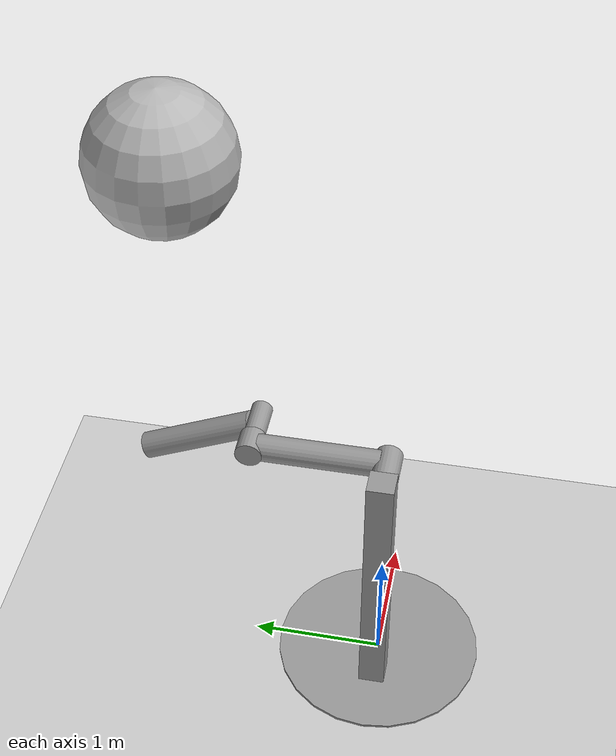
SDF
<sdf version="1.5">
  <world name="default">
    <physics type="ode">
      <gravity>0.000000 0.000000 -9.810000</gravity>
      <ode>
        <ode_quiet>1</ode_quiet>
        <solver>
          <type>world</type>
          <iters>250</iters>
          <precon_iters>0</precon_iters>
          <sor>1.400000</sor>
        </solver>
        <constraints>
          <cfm>0.000000</cfm>
          <erp>0.200000</erp>
          <contact_max_correcting_vel>0.000000</contact_max_correcting_vel>
          <contact_surface_layer>0.00000</contact_surface_layer>
        </constraints>
      </ode>
      <real_time_update_rate>1000.000000</real_time_update_rate>
      <max_step_size>0.001000</max_step_size>
    </physics>
    <model name="ground_plane">
    <static>true</static>
    <link name="link">
      <collision name="collision">
        <geometry>
          <plane>
            <normal>0 0 1</normal>
            <size>100 100</size>
          </plane>
        </geometry>
        <surface>
          <friction>
            <ode>
              <mu>100</mu>
              <mu2>50</mu2>
            </ode>
          </friction>
        </surface>
      </collision>
      <visual name="visual">
        <cast_shadows>false</cast_shadows>
        <geometry>
          <plane>
            <normal>0 0 1</normal>
            <size>100 100</size>
          </plane>
        </geometry>
        <material>
          <script>
            <uri>file://media/materials/scripts/gazebo.material</uri>
            <name>Gazebo/Grey</name>
          </script>
        </material>
      </visual>
    </link>
  </model>
 <model name="double_pendulum_with_base">
    <link name="base">
      <inertial>
        <mass>100</mass>
      </inertial>
      <visual name="vis_plate_on_ground">
        <pose>0 0 0.01  0 0 0</pose>
        <geometry>
          <cylinder>
            <radius>0.8</radius>
            <length>0.02</length>
          </cylinder>
        </geometry>
        <material>
          <script>
            <uri>file://media/materials/scripts/gazebo.material</uri>
            <name>Gazebo/Grey</name>
          </script>
        </material>
      </visual>
      <visual name="vis_pole">
        <pose>-0.275 0 1.1  0 0 0</pose>
        <geometry>
          <box><size>0.2 0.2 2.2</size></box>
        </geometry>
        <material>
          <script>
            <uri>file://media/materials/scripts/gazebo.material</uri>
            <name>Gazebo/Grey</name>
          </script>
        </material>
      </visual>
      <collision name="col_plate_on_ground">
        <pose>0 0 0.01  0 0 0</pose>
        <geometry>
          <cylinder>
            <radius>0.8</radius>
            <length>0.02</length>
          </cylinder>
        </geometry>
      </collision>
      <collision name="col_pole">
        <pose>-0.275 0 1.1  0 0 0</pose>
        <geometry>
          <box><size>0.2 0.2 2.2</size></box>
        </geometry>
      </collision>
    </link>
    <!-- upper link, length 1, IC -90 degrees -->
    <link name="upper_link">
      <pose>0 0 2.1  -1.5708 0 0</pose>
      <self_collide>0</self_collide>
      <inertial>
        <pose>0 0 0.5  0 0 0</pose>
      </inertial>
      <visual name="vis_upper_joint">
        <pose>-0.05 0 0  0 1.5708 0</pose>
        <geometry>
          <cylinder>
            <radius>0.1</radius>
            <length>0.3</length>
          </cylinder>
        </geometry>
        <material>
          <script>
            <uri>file://media/materials/scripts/gazebo.material</uri>
            <name>Gazebo/Grey</name>
          </script>
        </material>
      </visual>
      <visual name="vis_lower_joint">
        <pose>0 0 1.0  0 1.5708 0</pose>
        <geometry>
          <cylinder>
            <radius>0.1</radius>
            <length>0.2</length>
          </cylinder>
        </geometry>
        <material>
          <script>
            <uri>file://media/materials/scripts/gazebo.material</uri>
            <name>Gazebo/Grey</name>
          </script>
        </material>
      </visual>
      <visual name="vis_cylinder">
        <pose>0 0 0.5  0 0 0</pose>
        <geometry>
          <cylinder>
            <radius>0.1</radius>
            <length>0.9</length>
          </cylinder>
        </geometry>
        <material>
          <script>
            <uri>file://media/materials/scripts/gazebo.material</uri>
            <name>Gazebo/Grey</name>
          </script>
        </material>
      </visual>
      <collision name="col_upper_joint">
        <pose>-0.05 0 0  0 1.5708 0</pose>
        <geometry>
          <cylinder>
            <radius>0.1</radius>
            <length>0.3</length>
          </cylinder>
        </geometry>
      </collision>
      <collision name="col_lower_joint">
        <pose>0 0 1.0  0 1.5708 0</pose>
        <geometry>
          <cylinder>
            <radius>0.1</radius>
            <length>0.2</length>
          </cylinder>
        </geometry>
      </collision>
      <collision name="col_cylinder">
        <pose>0 0 0.5  0 0 0</pose>
        <geometry>
          <cylinder>
            <radius>0.1</radius>
            <length>0.9</length>
          </cylinder>
        </geometry>
      </collision>
    </link>
    <!-- lower link, length 1, IC ~-120 degrees more -->
    <link name="lower_link">
      <pose>0.25 1.0 2.1  -2 0 0</pose>
      <self_collide>0</self_collide>
      <inertial>
        <pose>0 0 0.5  0 0 0</pose>
      </inertial>
      <visual name="vis_lower_joint">
        <pose>0 0 0  0 1.5708 0</pose>
        <geometry>
          <cylinder>
            <radius>0.08</radius>
            <length>0.3</length>
          </cylinder>
        </geometry>
        <material>
          <script>
            <uri>file://media/materials/scripts/gazebo.material</uri>
            <name>Gazebo/Grey</name>
          </script>
        </material>
      </visual>
      <visual name="vis_cylinder">
        <pose>0 0 0.5  0 0 0</pose>
        <geometry>
          <cylinder>
            <radius>0.1</radius>
            <length>0.9</length>
          </cylinder>
        </geometry>
        <material>
          <script>
            <uri>file://media/materials/scripts/gazebo.material</uri>
            <name>Gazebo/Grey</name>
          </script>
        </material>
      </visual>
      <collision name="col_lower_joint">
        <pose>0 0 0  0 1.5708 0</pose>
        <geometry>
          <cylinder>
            <radius>0.08</radius>
            <length>0.3</length>
          </cylinder>
        </geometry>
      </collision>
      <collision name="col_cylinder">
        <pose>0 0 0.5  0 0 0</pose>
        <geometry>
          <cylinder>
            <radius>0.1</radius>
            <length>0.9</length>
          </cylinder>
        </geometry>
      </collision>
    </link>
    <!-- pin joint for upper link, at origin of upper link -->
    <joint name="upper_joint" type="revolute">
      <parent>base</parent>
      <child>upper_link</child>
      <axis>
        <xyz>1.0 0 0</xyz>
      </axis>
    </joint>
    <!-- pin joint for lower link, at origin of child link -->
    <joint name="lower_joint" type="revolute">
      <parent>upper_link</parent>
      <child>lower_link</child>
      <axis>
        <xyz>1.0 0 0</xyz>
      </axis>
    </joint>
  </model>
    <model name="sphere">
      <pose>0 1.5 4.5 0 0 0</pose>
      <allow_auto_disable>false</allow_auto_disable>
      <link name="link">
        <inertial>
          <inertia>
            <ixx>1</ixx>
            <ixy>0</ixy>
            <ixz>0.3</ixz>
            <iyy>1</iyy>
            <iyz>0</iyz>
            <izz>1</izz>
          </inertia>
          <mass>1.0</mass>
        </inertial>
        <velocity_decay>
          <linear>0.0</linear>
          <angular>0.0</angular>
        </velocity_decay>
        <collision name="collision">
          <geometry>
            <sphere>
              <radius>0.5</radius>
            </sphere>
          </geometry>
          <surface>
            <friction>
              <ode>
                <mu>0.5</mu>
                <mu2>1</mu2>
              </ode>
            </friction>
            <contact>
              <ode>
                <max_vel>0</max_vel>
                <min_depth>0</min_depth>
              </ode>
            </contact>
          </surface>
        </collision>
        <visual name="visual">
          <geometry>
            <sphere>
              <radius>0.5</radius>
            </sphere>
          </geometry>
          <material>
            <script>Gazebo/WoodPallet</script>
          </material>
        </visual>
      </link>
    </model>
    <light type="directional" name="sun">
      <pose>0 0 10 0 0 0</pose>
      <diffuse>8 .8 .8 1</diffuse>
      <specular>.1 .1 .1 1</specular>
      <attenuation>
        <range>10</range>
        <linear>0.01</linear>
        <constant>0.8</constant>
        <quadratic>0.0</quadratic>
      </attenuation>
      <direction>0 .5 -.5</direction>
      <cast_shadows>true</cast_shadows>
    </light>
  </world>
</sdf>
